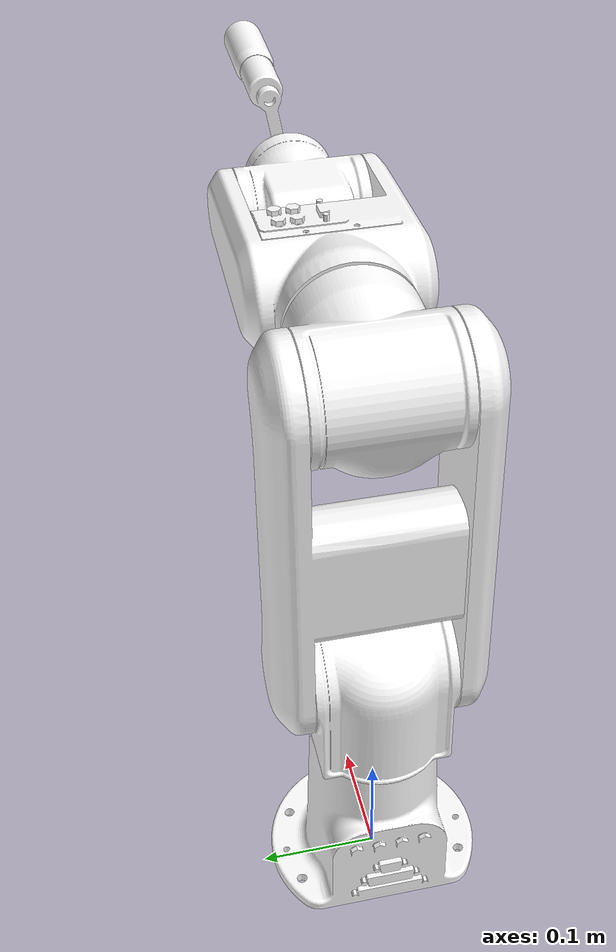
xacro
<?xml version="1.0"?>
<robot xmlns:xacro="http://www.ros.org/wiki/xacro" name="sr1">

  <!-- Constants for robot dimensions -->
  <xacro:property name="PI" value="3.1415926535897931"/>
  <xacro:property name="base_radius" value="0.07" />
  <xacro:property name="joint_offset_base" value="0.0" />

  <xacro:property name="radius1" value="0.07" /> <!-- Link 1 -->
  <xacro:property name="height1" value="0.12" />
  <xacro:property name="joint_offset_1" value="0.0" />
  <xacro:property name="j2l_offset1" value="0.0" />

  <xacro:property name="length2" value="0.08" />
  <xacro:property name="width2" value="0.14" />
  <xacro:property name="height2" value="0.12" /> <!-- Link 2 -->
  <xacro:property name="joint_offset_2_z" value="0.24" />
  <xacro:property name="j2l_offset2" value="0.12" />

  <xacro:property name="length3" value="0.10" />
  <xacro:property name="width3" value="0.10" />
  <xacro:property name="height3" value="0.15" /> <!-- Link 2 -->
  <xacro:property name="joint_offset_3" value="0.275" />
  <xacro:property name="j2l_offset3" value="0.0" />

  <xacro:property name="radius4" value="0.05" />
  <xacro:property name="height4" value="0.17" /> <!-- Link 2 -->
  <xacro:property name="joint_offset_4_y" value="0.27" />
  <xacro:property name="j2l_offset4" value="0.135" />

  <xacro:property name="radius5" value="0.05" />
  <xacro:property name="height5" value="0.1" /> <!-- Link 2 -->
  <xacro:property name="joint_offset_5" value="0.0" />
  <xacro:property name="j2l_offset5" value="0.12" />

  <xacro:property name="radius6" value="0.03" />
  <xacro:property name="height6" value="0.08" /> <!-- Link 6 -->
  <xacro:property name="joint_offset_6" value="0.0" />
  <xacro:property name="j2l_offset6" value="0.09" />

  <xacro:property name="width_tool" value="0.03" />
  <xacro:property name="length_tool" value="0.03" />
  <xacro:property name="height_tool" value="0.08" />
  <xacro:property name="joint_offset_tool" value="0.16" />

  <xacro:property name="width_end" value="0.03" />
  <xacro:property name="length_end" value="0.03" />
  <xacro:property name="height_end" value="0.03" />
  <xacro:property name="joint_offset_end" value="0.04" />

  <xacro:property name="height7" value="0.1" /> <!-- Link 7 -->
  <xacro:property name="eef_height1" value="0.1" /> <!-- Link eef -->
  <xacro:property name="camera_height" value="0.05" /> <!-- Link camera -->
  <xacro:property name="camera_width" value="0.05" /> <!-- Link camera -->
  <xacro:property name="axel_offset" value="0.05" /> <!-- Space btw top of beam and the each joint -->
#  <xacro:property name="mesh_dir" value="/home/i5/" />
  <!-- Import Rviz colors -->

  <!-- Used for fixing robot to Gazebo 'base_link' -->

  <link name="world"/>

  <joint name="joint_base" type="fixed">
    <parent link="world"/>
    <child link="link_base"/>
    <origin xyz="0 0 ${joint_offset_base}" rpy="0 0 0"/>
  </joint>

    <!-- Link base-->
  <link name="link_base">

    <collision>
      <origin rpy="0.0 0 0" xyz="0 0 0"/>
      <geometry>
        <cylinder length="0.01" radius = "0.09"/>
      </geometry>
    </collision>

    <collision>
     <origin rpy="0.0 0 0" xyz="0 0 0.085"/>
      <geometry>
        <cylinder length="0.15" radius = "0.06"/>
      </geometry>
    </collision>

    <collision>
     <origin rpy="0.0 0 0" xyz="-0.055 0 0.045"/>
      <geometry>
        <box size= "0.02 0.09 0.09"/>
      </geometry>
    </collision>

    <visual>
      <origin rpy="0.0 0 0" xyz="0 0 0"/>
      <geometry>
        <mesh filename="package://sr1_description/mesh/base.dae"/>
      </geometry>
    </visual>

    <inertial>
      <origin xyz="0 0 0" rpy="0 0 0"/>
      <mass value="0.1"/>
      <inertia
	  ixx="1.0" ixy="0.0" ixz="0.0"
	  iyy="1.0" iyz="0.0"
	  izz="1.0"/>
    </inertial>
  </link>

  <joint name="joint_1" type="revolute">
    <parent link="link_base"/>
    <child link="link_1"/>
    <axis xyz="0 0 1"/>
    <origin xyz="0 0 ${joint_offset_1}" rpy="0 0 0"/>
    <dynamics damping="0.7"/>
    <limit lower="-2.7925268031909273230779052295818" upper="2.53177" effort="1000.0" velocity="0.1"/>
  </joint>

  <!-- Link 1-->
  <link name="link_1">
    <collision>
      <origin rpy="0.0 0 0" xyz="0 0 0.22"/>
      <geometry>
        <box size="0.1 0.11 0.13"/>
      </geometry>
    </collision>

    <visual>
      <origin rpy="0.0 0 0" xyz="0 0 0"/>
      <geometry>
        <mesh filename="package://sr1_description/mesh/1_axis.dae"/>
      </geometry>
    </visual>

    <inertial>
      <origin xyz="0 0 ${j2l_offset1}" rpy="0 0 0"/>
      <mass value="0.1"/>
      <inertia
	  ixx="1.0" ixy="0.0" ixz="0.0"
	  iyy="1.0" iyz="0.0"
	  izz="1.0"/>
    </inertial>
  </link>

  <!-- Joint 2-->
  <joint name="joint_2" type="revolute">
    <parent link="link_1"/>
    <child link="link_2"/>
    <origin xyz="0 0 ${joint_offset_2_z}" rpy="${-PI/2.0} 0 0"/>
    <axis xyz="0 0 1"/>
    <dynamics damping="0.7"/>
    <limit lower="-1.9198621771937625346160598453375" upper="1.5707963267948966192313216916398" effort="1000.0" velocity="0.1"/>
  </joint>

  <!-- Link 2-->
  <link name="link_2">
    <collision>
      <origin rpy="0.0 0 0" xyz="0 -0.15 0"/>
      <geometry>
        <box size="0.06 0.11 0.12"/>
      </geometry>
    </collision>

    <collision>
      <origin rpy="0.0 0 0" xyz="0 -0.13 0.075"/>
      <geometry>
        <box size="0.10 0.38 0.03"/>
      </geometry>
    </collision>

    <collision>
      <origin rpy="0.0 0 0" xyz="0 -0.13 -0.075"/>
      <geometry>
        <box size="0.10 0.38 0.03"/>
      </geometry>
    </collision>

    <visual>
      <origin rpy="1.57079632679 0 0" xyz="0 0.24 0"/>
      <geometry>
        <mesh filename="package://sr1_description/mesh/2_axis.dae"/>
      </geometry>
    </visual>

    <inertial>
      <origin xyz="0 ${-j2l_offset2} 0" rpy="0 0 0"/>
      <mass value="0.1"/>
      <inertia
	  ixx="1.0" ixy="0.0" ixz="0.0"
	  iyy="1.0" iyz="0.0"
	  izz="1.0"/>
    </inertial>
  </link>

  <!-- Joint 3-->
  <joint name="joint_3" type="revolute">
    <parent link="link_2"/>
    <child link="link_3"/>
    <origin xyz="0 ${-joint_offset_3} 0" rpy="0 0 ${-PI/2.0}"/>
    <axis xyz="0 0 1"/>
    <dynamics damping="0.7"/>
    <limit lower="-5.061454830783555773078703228617" upper="1.832595714594046055769875306913" effort="1000.0" velocity="0.1"/>
  </joint>

  <!-- Link 3-->
  <link name="link_3">
    <collision>
      <origin rpy="0 0 0" xyz="0 0 0"/>
      <geometry>
        <cylinder length="0.12" radius = "0.05"/>
      </geometry>
    </collision>

    <collision>
      <origin rpy="-1.57079632679 0 0" xyz="0 0.045 0"/>
      <geometry>
        <cylinder length="0.07" radius = "0.06"/>
      </geometry>
    </collision>

    <collision>
      <origin rpy="0.0 0 0" xyz="-0.03 0.045 0"/>
      <geometry>
        <box size="0.06 0.07 0.11"/>
      </geometry>
    </collision>

    <collision>
      <origin rpy="-1.57079632679 0 0" xyz="0 0.045 0"/>
      <geometry>
        <cylinder length="0.07" radius = "0.06"/>
      </geometry>
    </collision>

    <visual>
      <origin rpy="1.57079632679 0 1.57079632679" xyz="-0.515 0 0"/>
      <geometry>
        <mesh filename="package://sr1_description/mesh/3_axis.dae"/>
      </geometry>
    </visual>

    <inertial>
      <origin xyz="0 0 0" rpy="0 0 0"/>
      <mass value="0.1"/>
      <inertia
	  ixx="1.0" ixy="0.0" ixz="0.0"
	  iyy="1.0" iyz="0.0"
	  izz="1.0"/>
    </inertial>
  </link>

  <!-- Joint 4-->
  <joint name="joint_4" type="revolute">
    <parent link="link_3"/>
    <child link="link_4"/>
    <origin xyz="0.0 ${joint_offset_4_y} 0" rpy="${PI/2.0} 0 0"/>
    <axis xyz="0 0 1"/>
    <dynamics damping="0.7"/>
    <limit lower="-3.1415926535897932384626433832795" upper="3.1415926535897932384626433832795" effort="1000.0" velocity="0.1"/>
  </joint>

  <!-- Link 4-->
  <link name="link_4">
    <collision>
      <origin rpy="0 0 0" xyz="0 0.0 0.16"/>
      <geometry>
        <cylinder length="0.06" radius = "0.06"/>
      </geometry>
    </collision>

    <collision>
      <origin rpy="1.57079632679 0 0" xyz="0 0.0 0.13"/>
      <geometry>
        <cylinder length="0.15" radius = "0.05"/>
      </geometry>
    </collision>

    <collision>
      <origin rpy="1.57079632679 0 0" xyz="0 0.065 0"/>
      <geometry>
        <cylinder length="0.02" radius = "0.04"/>
      </geometry>
    </collision>

    <collision>
      <origin rpy="1.57079632679 0 0" xyz="0 -0.065 0"/>
      <geometry>
        <cylinder length="0.02" radius = "0.04"/>
      </geometry>
    </collision>

    <collision>
      <origin rpy="0 0 0" xyz="0 0.065 0.065"/>
      <geometry>
        <box size="0.08 0.02 0.13"/>
      </geometry>
    </collision>

    <collision>
      <origin rpy="0 0 0" xyz="0 -0.065 0.065"/>
      <geometry>
        <box size="0.08 0.02 0.13"/>
      </geometry>
    </collision>

    <visual>
      <origin rpy="0.0 1.57079632679 0" xyz="-0.515 0 0.27"/>
      <geometry>
        <mesh filename="package://sr1_description/mesh/4_axis.dae"/>
      </geometry>
    </visual>

    <inertial>
      <origin xyz="0 0 ${j2l_offset4}" rpy="0 0 0"/>
      <mass value="0.1"/>
      <inertia
	  ixx="1.0" ixy="0.0" ixz="0.0"
	  iyy="1.0" iyz="0.0"
	  izz="1.0"/>
    </inertial>
  </link>

  <!-- Joint 5-->
  <joint name="joint_5" type="revolute">
    <parent link="link_4"/>
    <child link="link_5"/>
    <axis xyz="0 0 1"/>
    <dynamics damping="0.7"/>
    <origin xyz="0 0 ${joint_offset_5}" rpy="${PI/2.0} 0 0"/>
    <limit lower="-2.2689280275926284500007979990352" upper="2.2689280275926284500007979990352" effort="1000.0" velocity="0.1"/>
  </joint>

  <!-- Link 5-->
  <link name="link_5">
    <collision>
      <origin rpy="1.57079632679 0 0" xyz="0 -0.025 0"/>
      <geometry>
        <cylinder length="0.05" radius = "0.04"/>
      </geometry>
    </collision>

    <collision>
      <origin rpy="0 0 0" xyz="0 0 0"/>
      <geometry>
        <cylinder length="0.11" radius = "0.035"/>
      </geometry>
    </collision>

    <collision>
      <origin rpy="0 0 0" xyz="0 0.035 0.0 "/>
      <geometry>
        <box size="0.07 0.07 0.07"/>
      </geometry>
    </collision>

    <visual>
      <origin rpy="-1.57079632679 0 -1.57079632679" xyz="-0.515 0.27 0"/>
      <geometry>
        <mesh filename="package://sr1_description/mesh/5_axis.dae"/>
      </geometry>
    </visual>

    <inertial>
      <origin xyz="0 0 0" rpy="0 0 0"/>
      <mass value="0.1"/>
      <inertia
	  ixx="1.0" ixy="0.0" ixz="0.0"
	  iyy="1.0" iyz="0.0"
	  izz="1.0"/>
    </inertial>
  </link>

  <!-- Joint 6-->
  <joint name="joint_6" type="revolute">
    <parent link="link_5"/>
    <child link="link_6"/>
    <axis xyz="0 0 1"/>
    <dynamics damping="0.7"/>
    <origin xyz="0 0 ${joint_offset_6}" rpy="${PI/2.0} 0 0"/>
    <limit lower="-6.283185307180000123139507" upper="6.283185307180000123139507" effort="1000.0" velocity="0.1"/>
  </joint>

  <!-- Link 6-->
  <link name="link_6">
    <collision>
      <origin rpy="0 0 0" xyz="0 0 0.04"/>
      <geometry>
        <cylinder length="0.02" radius = "0.015"/>
      </geometry>
    </collision>

    <visual>
      <origin rpy="0.0 -1.57079632679 0" xyz="0.515 0 -0.270"/>
      <geometry>
        <mesh filename="package://sr1_description/mesh/6_axis.dae"/>
      </geometry>
    </visual>

    <inertial>
      <origin xyz="0 0 ${j2l_offset6}" rpy="0 0 0"/>
      <mass value="0.1"/>
      <inertia
	  ixx="1.0" ixy="0.0" ixz="0.0"
	  iyy="1.0" iyz="0.0"
	  izz="1.0"/>
    </inertial>
  </link>

   <!-- Link end-->
  <link name="link_end">
    <collision>
      <origin rpy="0.0 0.0 -0.2" xyz="0.03 -0.004 0.085"/>
      <geometry>
        <box size="0.08 0.02 0.015"/>
      </geometry>
    </collision>
    <collision>
      <origin rpy="0.0 0.0 0.0" xyz="0.06 -0.01 0.155"/>
      <geometry>
        <cylinder length="0.14" radius = "0.02"/>
      </geometry>
    </collision>

    <visual>
      <origin rpy="0.0 1.57079632679 -1.74532922" xyz="0.05 0.135 -0.025"/>
      <geometry>
        <mesh filename="package://sr1_description/mesh/tool_pen.dae"/>
      </geometry>
    </visual>

    <inertial>
      <origin xyz="0 0 ${j2l_offset6}" rpy="0 0 0"/>
      <mass value="0.1"/>
      <inertia
	  ixx="1.0" ixy="0.0" ixz="0.0"
	  iyy="1.0" iyz="0.0"
	  izz="1.0"/>
    </inertial>
  </link>

  <!-- Joint end-->
  <joint name="joint_end" type="fixed">
    <parent link="link_6"/>
    <child link="link_end"/>
    <axis xyz="0 0 1"/>
    <dynamics damping="0.7"/>
    <origin xyz="0 0 0" rpy="0 0 0"/>
  </joint>

  <!-- Link aux-->
  <link name="link_aux">
    <collision>
      <origin rpy="0.0 0.0 0.0" xyz="0.0 0.0 0.0"/>
      <geometry>
	<sphere radius="0.01"/>
      </geometry>
    </collision>

    <visual>
      <origin rpy="0.0 0.0 0.0" xyz="0.0 0.0 0.0"/>
      <geometry>
	<sphere radius="0.01"/>
      </geometry>
    </visual>

    <inertial>
      <origin xyz="0 0 ${j2l_offset6}" rpy="0 0 0"/>
      <mass value="0.1"/>
      <inertia
	  ixx="1.0" ixy="0.0" ixz="0.0"
	  iyy="1.0" iyz="0.0"
	  izz="1.0"/>
    </inertial>
  </link>

  <!-- Joint aux-->
  <joint name="joint_aux" type="fixed">
    <parent link="link_end"/>
    <child link="link_aux"/>
    <axis xyz="0 0 1"/>
    <dynamics damping="0.7"/>
    <origin xyz="0.06 -0.01 0.22" rpy="0 0 0"/>
  </joint>

</robot>
